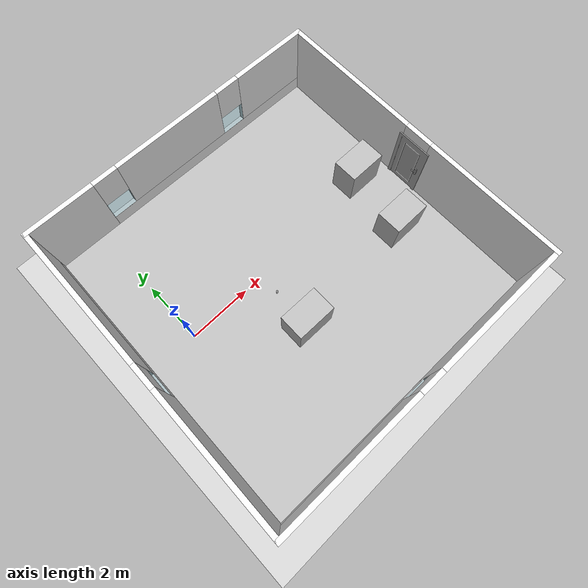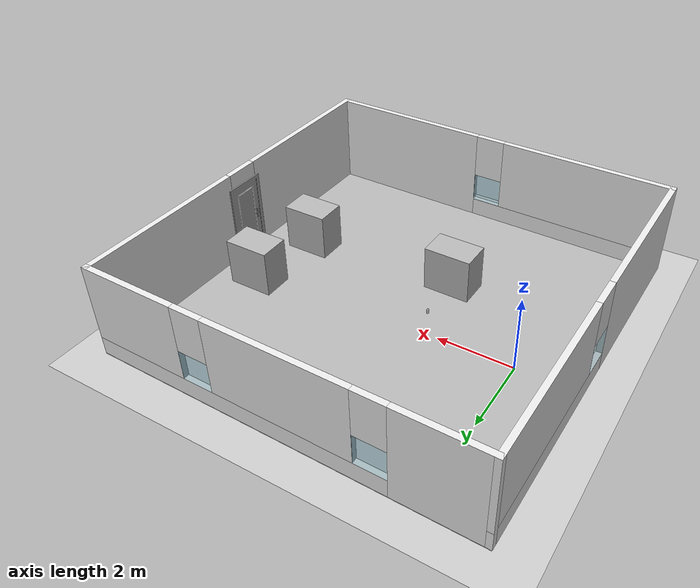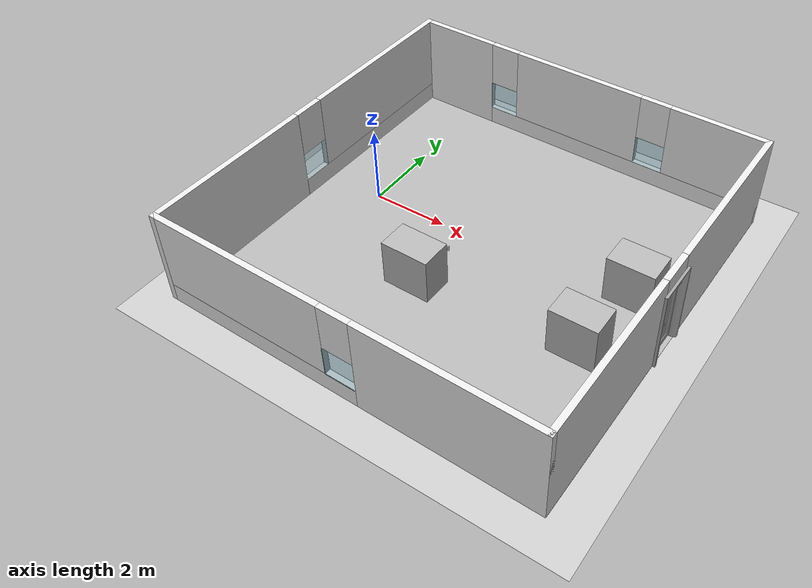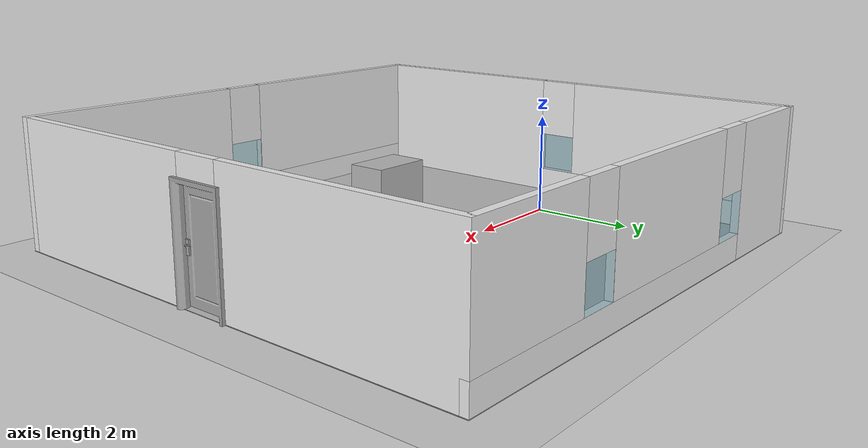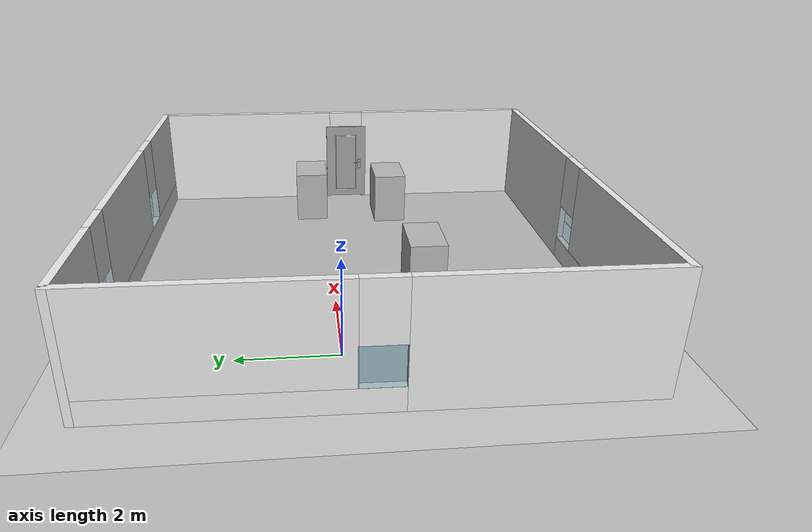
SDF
<sdf version="1.6">
 <world name="default">
  <scene><ambient>0.5 0.5 0.5 1</ambient><background>0.5 0.5 0.5 1</background><shadows>0</shadows></scene>
  <physics name="default_physics" default="0" type="ode">
   <ode>
    <solver>
     <type>quick</type>
     <iters>10</iters>
     <sor>1.3</sor>
     <use_dynamic_moi_rescaling>0</use_dynamic_moi_rescaling>
    </solver>
    <constraints>
     <cfm>0</cfm>
     <erp>0.2</erp>
     <contact_max_correcting_vel>100</contact_max_correcting_vel>
     <contact_surface_layer>0.001</contact_surface_layer>
    </constraints>
   </ode>
   <real_time_update_rate>1000</real_time_update_rate>
   <max_step_size>0.001</max_step_size>
   <real_time_factor>1</real_time_factor>
  </physics>
  <model name="ground_plane">
   <static>1</static>
   <link name="link">
    <collision name="collision">
     <geometry><plane><normal>0 0 1</normal><size>100 100</size></plane></geometry>
     <surface>
      <contact><collide_bitmask>65535</collide_bitmask></contact>
      <friction><ode><mu>100</mu><mu2>50</mu2></ode></friction>
     </surface>
    </collision>
    <visual name="visual">
     <cast_shadows>0</cast_shadows>
     <geometry><plane><normal>0 0 1</normal><size>100 100</size></plane></geometry>
     <material>
      <script><uri>file://media/materials/scripts/gazebo.material</uri><name>Gazebo/Grey</name></script>
     </material>
    </visual>
   </link>
  </model>
  <light name="my_light" type="directional">
   <pose>0 0 30 0 -0 0</pose>
   <diffuse>0.5 0.5 0.5 1</diffuse>
   <specular>0.1 0.1 0.1 1</specular>
   <attenuation><range>200</range></attenuation>
   <direction>0 0 -1</direction>
   <cast_shadows>0</cast_shadows>
  </light>
  <gravity>0 0 -9.8</gravity>
  <magnetic_field>6e-06 2.3e-05 -4.2e-05</magnetic_field>
  <atmosphere type="adiabatic"/>
  <audio><device>default</device></audio>
  <spherical_coordinates>
   <surface_model>EARTH_WGS84</surface_model>
   <latitude_deg>0</latitude_deg>
   <longitude_deg>0</longitude_deg>
   <elevation>0</elevation>
   <heading_deg>0</heading_deg>
  </spherical_coordinates>
  <model name="office_small">
   <model name="door_3d">
    <link name="link_1">
     <visual name="visual">
      <geometry><mesh><uri>model://door_3d/meshes/door_v2_door.dae</uri><scale>1 1 1</scale></mesh></geometry>
      <material>
       <script>
        <uri>model://door_3d/materials/scripts</uri>
        <uri>model://door_3d/materials/textures</uri>
        <name>door_3d</name>
       </script>
      </material>
     </visual>
     <collision name="collision">
      <geometry><mesh><uri>model://door_3d/meshes/door_v2_door.dae</uri><scale>1 1 1</scale></mesh></geometry>
     </collision>
    </link>
    <link name="link_2">
     <visual name="visual">
      <geometry><mesh><uri>model://door_3d/meshes/door_v2_handle.dae</uri><scale>1 1 1</scale></mesh></geometry>
      <material>
       <script>
        <uri>model://door_3d/materials/scripts</uri>
        <uri>model://door_3d/materials/textures</uri>
        <name>door_handle</name>
       </script>
      </material>
     </visual>
     <collision name="collision">
      <geometry><mesh><uri>model://door_3d/meshes/door_v2_handle.dae</uri><scale>1 1 1</scale></mesh></geometry>
     </collision>
    </link>
    <static>1</static>
    <pose>0.856135 4.98035 0 0 -0 0</pose>
   </model>
   <model name="office_small">
    <pose>0.796663 0.043102 0 0 -0 0</pose>
    <link name="Wall_2">
     <pose>0 4.925 0 0 -0 0</pose>
     <visual name="Wall_2_Visual_0">
      <pose>-2.69024 0 1.25 0 -0 0</pose>
      <geometry><box><size>4.61951 0.15 2.5</size></box></geometry>
      <material>
       <script>
        <uri>model://office_small/materials/scripts</uri>
        <uri>model://office_small/materials/textures</uri>
        <name>wall_white</name>
       </script>
      </material>
     </visual>
     <collision name="Wall_2_Collision_0">
      <geometry><box><size>4.61951 0.15 2.5</size></box></geometry>
      <pose>-2.69024 0 1.25 0 -0 0</pose>
     </collision>
     <visual name="Wall_2_Visual_1">
      <pose>2.75976 0 1.25 0 -0 0</pose>
      <geometry><box><size>4.48049 0.15 2.5</size></box></geometry>
      <material>
       <script>
        <uri>model://office_small/materials/scripts</uri>
        <uri>model://office_small/materials/textures</uri>
        <name>wall_white</name>
       </script>
      </material>
     </visual>
     <collision name="Wall_2_Collision_1">
      <geometry><box><size>4.48049 0.15 2.5</size></box></geometry>
      <pose>2.75976 0 1.25 0 -0 0</pose>
     </collision>
     <visual name="Wall_2_Visual_2">
      <pose>0.06951 0 2.25 0 -0 0</pose>
      <geometry><box><size>0.9 0.15 0.5</size></box></geometry>
      <material>
       <script>
        <uri>model://office_small/materials/scripts</uri>
        <uri>model://office_small/materials/textures</uri>
        <name>wall_white</name>
       </script>
      </material>
     </visual>
     <collision name="Wall_2_Collision_2">
      <geometry><box><size>0.9 0.15 0.5</size></box></geometry>
      <pose>0.06951 0 2.25 0 -0 0</pose>
     </collision>
    </link>
    <link name="Wall_3">
     <pose>4.925 0 0 0 0 -1.5708</pose>
     <visual name="Wall_3_Visual_0">
      <pose>-2.74228 0 1.25 0 -0 0</pose>
      <geometry><box><size>4.51544 0.15 2.5</size></box></geometry>
      <material>
       <script>
        <uri>model://office_small/materials/scripts</uri>
        <uri>model://office_small/materials/textures</uri>
        <name>wall_white</name>
       </script>
      </material>
     </visual>
     <collision name="Wall_3_Collision_0">
      <geometry><box><size>4.51544 0.15 2.5</size></box></geometry>
      <pose>-2.74228 0 1.25 0 -0 0</pose>
     </collision>
     <visual name="Wall_3_Visual_1">
      <pose>2.25772 0 0.25 0 -0 0</pose>
      <geometry><box><size>5.48456 0.15 0.5</size></box></geometry>
      <material>
       <script>
        <uri>model://office_small/materials/scripts</uri>
        <uri>model://office_small/materials/textures</uri>
        <name>wall_white</name>
       </script>
      </material>
     </visual>
     <collision name="Wall_3_Collision_1">
      <geometry><box><size>5.48456 0.15 0.5</size></box></geometry>
      <pose>2.25772 0 0.25 0 -0 0</pose>
     </collision>
     <visual name="Wall_3_Visual_2">
      <pose>2.65772 0 1.5 0 -0 0</pose>
      <geometry><box><size>4.68456 0.15 2</size></box></geometry>
      <material>
       <script>
        <uri>model://office_small/materials/scripts</uri>
        <uri>model://office_small/materials/textures</uri>
        <name>wall_white</name>
       </script>
      </material>
     </visual>
     <collision name="Wall_3_Collision_2">
      <geometry><box><size>4.68456 0.15 2</size></box></geometry>
      <pose>2.65772 0 1.5 0 -0 0</pose>
     </collision>
     <visual name="Wall_3_Visual_3">
      <pose>-0.084559 0 1.9 0 -0 0</pose>
      <geometry><box><size>0.8 0.15 1.2</size></box></geometry>
      <material>
       <script>
        <uri>model://office_small/materials/scripts</uri>
        <uri>model://office_small/materials/textures</uri>
        <name>wall_white</name>
       </script>
      </material>
     </visual>
     <collision name="Wall_3_Collision_3">
      <geometry><box><size>0.8 0.15 1.2</size></box></geometry>
      <pose>-0.084559 0 1.9 0 -0 0</pose>
     </collision>
    </link>
    <link name="Wall_4">
     <pose>0 -4.925 0 0 -0 3.14159</pose>
     <visual name="Wall_4_Visual_0">
      <pose>-2.74632 0 1.25 0 -0 0</pose>
      <geometry><box><size>4.50736 0.15 2.5</size></box></geometry>
      <material>
       <script>
        <uri>model://office_small/materials/scripts</uri>
        <uri>model://office_small/materials/textures</uri>
        <name>wall_white</name>
       </script>
      </material>
     </visual>
     <collision name="Wall_4_Collision_0">
      <geometry><box><size>4.50736 0.15 2.5</size></box></geometry>
      <pose>-2.74632 0 1.25 0 -0 0</pose>
     </collision>
     <visual name="Wall_4_Visual_1">
      <pose>2.25368 0 0.25 0 -0 0</pose>
      <geometry><box><size>5.49264 0.15 0.5</size></box></geometry>
      <material>
       <script>
        <uri>model://office_small/materials/scripts</uri>
        <uri>model://office_small/materials/textures</uri>
        <name>wall_white</name>
       </script>
      </material>
     </visual>
     <collision name="Wall_4_Collision_1">
      <geometry><box><size>5.49264 0.15 0.5</size></box></geometry>
      <pose>2.25368 0 0.25 0 -0 0</pose>
     </collision>
     <visual name="Wall_4_Visual_2">
      <pose>2.65368 0 1.5 0 -0 0</pose>
      <geometry><box><size>4.69264 0.15 2</size></box></geometry>
      <material>
       <script>
        <uri>model://office_small/materials/scripts</uri>
        <uri>model://office_small/materials/textures</uri>
        <name>wall_white</name>
       </script>
      </material>
     </visual>
     <collision name="Wall_4_Collision_2">
      <geometry><box><size>4.69264 0.15 2</size></box></geometry>
      <pose>2.65368 0 1.5 0 -0 0</pose>
     </collision>
     <visual name="Wall_4_Visual_3">
      <pose>-0.09264 0 1.9 0 -0 0</pose>
      <geometry><box><size>0.8 0.15 1.2</size></box></geometry>
      <material>
       <script>
        <uri>model://office_small/materials/scripts</uri>
        <uri>model://office_small/materials/textures</uri>
        <name>wall_white</name>
       </script>
      </material>
     </visual>
     <collision name="Wall_4_Collision_3">
      <geometry><box><size>0.8 0.15 1.2</size></box></geometry>
      <pose>-0.09264 0 1.9 0 -0 0</pose>
     </collision>
    </link>
    <link name="Wall_5">
     <pose>-4.925 0 0 0 -0 1.5708</pose>
     <visual name="Wall_5_Visual_0">
      <pose>-3.88364 0 1.25 0 -0 0</pose>
      <geometry><box><size>2.23271 0.15 2.5</size></box></geometry>
      <material>
       <script>
        <uri>model://office_small/materials/scripts</uri>
        <uri>model://office_small/materials/textures</uri>
        <name>wall_white</name>
       </script>
      </material>
     </visual>
     <collision name="Wall_5_Collision_0">
      <geometry><box><size>2.23271 0.15 2.5</size></box></geometry>
      <pose>-3.88364 0 1.25 0 -0 0</pose>
     </collision>
     <visual name="Wall_5_Visual_1">
      <pose>1.11636 0 0.25 0 -0 0</pose>
      <geometry><box><size>7.76729 0.15 0.5</size></box></geometry>
      <material>
       <script>
        <uri>model://office_small/materials/scripts</uri>
        <uri>model://office_small/materials/textures</uri>
        <name>wall_white</name>
       </script>
      </material>
     </visual>
     <collision name="Wall_5_Collision_1">
      <geometry><box><size>7.76729 0.15 0.5</size></box></geometry>
      <pose>1.11636 0 0.25 0 -0 0</pose>
     </collision>
     <visual name="Wall_5_Visual_2">
      <pose>-0.169878 0 1.5 0 -0 0</pose>
      <geometry><box><size>3.59482 0.15 2</size></box></geometry>
      <material>
       <script>
        <uri>model://office_small/materials/scripts</uri>
        <uri>model://office_small/materials/textures</uri>
        <name>wall_white</name>
       </script>
      </material>
     </visual>
     <collision name="Wall_5_Collision_2">
      <geometry><box><size>3.59482 0.15 2</size></box></geometry>
      <pose>-0.169878 0 1.5 0 -0 0</pose>
     </collision>
     <visual name="Wall_5_Visual_3">
      <pose>3.71376 0 1.5 0 -0 0</pose>
      <geometry><box><size>2.57247 0.15 2</size></box></geometry>
      <material>
       <script>
        <uri>model://office_small/materials/scripts</uri>
        <uri>model://office_small/materials/textures</uri>
        <name>wall_white</name>
       </script>
      </material>
     </visual>
     <collision name="Wall_5_Collision_3">
      <geometry><box><size>2.57247 0.15 2</size></box></geometry>
      <pose>3.71376 0 1.5 0 -0 0</pose>
     </collision>
     <visual name="Wall_5_Visual_4">
      <pose>-2.36729 0 1.9 0 -0 0</pose>
      <geometry><box><size>0.8 0.15 1.2</size></box></geometry>
      <material>
       <script>
        <uri>model://office_small/materials/scripts</uri>
        <uri>model://office_small/materials/textures</uri>
        <name>wall_white</name>
       </script>
      </material>
     </visual>
     <collision name="Wall_5_Collision_4">
      <geometry><box><size>0.8 0.15 1.2</size></box></geometry>
      <pose>-2.36729 0 1.9 0 -0 0</pose>
     </collision>
     <visual name="Wall_5_Visual_5">
      <pose>2.02753 0 1.9 0 -0 0</pose>
      <geometry><box><size>0.8 0.15 1.2</size></box></geometry>
      <material>
       <script>
        <uri>model://office_small/materials/scripts</uri>
        <uri>model://office_small/materials/textures</uri>
        <name>wall_white</name>
       </script>
      </material>
     </visual>
     <collision name="Wall_5_Collision_5">
      <geometry><box><size>0.8 0.15 1.2</size></box></geometry>
      <pose>2.02753 0 1.9 0 -0 0</pose>
     </collision>
    </link>
    <static>1</static>
   </model>
   <model name="window">
    <link name="link_2">
     <visual name="visual">
      <pose>0 0 0.9 0 -0 0</pose>
      <geometry><box><size>0.8 0.15 0.8</size></box></geometry>
      <material>
       <lighting>1</lighting>
       <ambient>0.1 0.5 0.6 1</ambient>
       <diffuse>0.1 0.5 0.6 1</diffuse>
       <specular>0.01 0.01 0.01 1</specular>
       <emissive>0 0 0 1</emissive>
      </material>
      <transparency>0.7</transparency>
     </visual>
     <collision name="collision">
      <pose>0 0 0.9 0 -0 0</pose>
      <geometry><box><size>0.8 0.15 0.8</size></box></geometry>
     </collision>
    </link>
    <static>1</static>
    <pose>-4.12651 2.07152 0 0 -0 1.5706</pose>
   </model>
   <model name="window_0">
    <link name="link_2">
     <visual name="visual">
      <pose>0 0 0.9 0 -0 0</pose>
      <geometry><box><size>0.8 0.15 0.8</size></box></geometry>
      <material>
       <lighting>1</lighting>
       <ambient>0.1 0.5 0.6 1</ambient>
       <diffuse>0.1 0.5 0.6 1</diffuse>
       <specular>0.01 0.01 0.01 1</specular>
       <emissive>0 0 0 1</emissive>
      </material>
      <transparency>0.7</transparency>
     </visual>
     <collision name="collision">
      <pose>0 0 0.9 0 -0 0</pose>
      <geometry><box><size>0.8 0.15 0.8</size></box></geometry>
     </collision>
    </link>
    <static>1</static>
    <pose>-4.12726 -2.32854 0 0 -0 1.57</pose>
   </model>
   <model name="window_1">
    <link name="link_2">
     <visual name="visual">
      <pose>0 0 0.9 0 -0 0</pose>
      <geometry><box><size>0.8 0.15 0.8</size></box></geometry>
      <material>
       <lighting>1</lighting>
       <ambient>0.1 0.5 0.6 1</ambient>
       <diffuse>0.1 0.5 0.6 1</diffuse>
       <specular>0.01 0.01 0.01 1</specular>
       <emissive>0 0 0 1</emissive>
      </material>
      <transparency>0.7</transparency>
     </visual>
     <collision name="collision">
      <pose>0 0 0.9 0 -0 0</pose>
      <geometry><box><size>0.8 0.15 0.8</size></box></geometry>
     </collision>
    </link>
    <static>1</static>
    <pose>0.875059 -4.88342 0 0 -0 0</pose>
   </model>
   <model name="window_2">
    <link name="link_2">
     <visual name="visual">
      <pose>0 0 0.9 0 -0 0</pose>
      <geometry><box><size>0.8 0.15 0.8</size></box></geometry>
      <material>
       <lighting>1</lighting>
       <ambient>0.1 0.5 0.6 1</ambient>
       <diffuse>0.1 0.5 0.6 1</diffuse>
       <specular>0.01 0.01 0.01 1</specular>
       <emissive>0 0 0 1</emissive>
      </material>
      <transparency>0.7</transparency>
     </visual>
     <collision name="collision">
      <pose>0 0 0.9 0 -0 0</pose>
      <geometry><box><size>0.8 0.15 0.8</size></box></geometry>
     </collision>
    </link>
    <static>1</static>
    <pose>5.73592 0.126978 0 0 -0 1.57</pose>
   </model>
   <model name="Floor">
    <link name="main">
     <pose>0.795 0.05 0.01 0 -0 0</pose>
     <collision name="main_Collision"><geometry><box><size>10 10 0.01</size></box></geometry></collision>
     <visual name="main_Visual">
      <geometry><box><size>10 10 0.01</size></box></geometry>
      <material>
       <script>
        <uri>model://office_small/materials/scripts</uri>
        <uri>model://office_small/materials/textures</uri>
        <name>floor</name>
       </script>
      </material>
     </visual>
    </link>
    <static>1</static>
   </model>
   <static>0</static>
   <pose>3.30174 0.266404 0 0 0 -1.58427</pose>
  </model>
  <model name="coca_cola">
   <link name="link">
    <pose>0 0 0.115 0 -0 0</pose>
    <inertial>
     <mass>0.39</mass>
     <inertia><ixx>0.00058</ixx><ixy>0</ixy><ixz>0</ixz><iyy>0.00058</iyy><iyz>0</iyz><izz>0.00019</izz></inertia>
    </inertial>
    <collision name="collision">
     <geometry><cylinder><radius>0.0301625</radius><length>0.12065</length></cylinder></geometry>
    </collision>
    <visual name="bodyMesh">
     <geometry><mesh><uri>model://coca_cola/meshes/coke.dae</uri><scale>1 1 1</scale></mesh></geometry>
    </visual>
   </link>
   <pose>2.64739 -0.69327 -0.039676 -2.4e-05 8e-06 0.00372</pose>
  </model>
  <model name="big_box3">
   <pose>2.62133 -1.96999 0.614498 3.14001 1.57 -0.013322</pose>
   <static>0</static>
   <link name="link">
    <inertial>
     <mass>40</mass>
     <inertia><ixx>1</ixx><ixy>0</ixy><ixz>0</ixz><iyy>1</iyy><iyz>0</iyz><izz>1</izz></inertia>
    </inertial>
    <collision name="collision">
     <geometry><box><size>1.2 0.8 1.25</size></box></geometry>
     <surface><contact><ode><max_vel>0.1</max_vel><min_depth>0.001</min_depth></ode></contact></surface>
    </collision>
    <visual name="visual">
     <geometry><mesh><uri>model://big_box3/meshes/big_box.dae</uri></mesh></geometry>
    </visual>
   </link>
  </model>
  <model name="big_box3_0">
   <pose>7.07383 0.365572 0.639497 4e-06 -0.000833 -0.000689</pose>
   <static>0</static>
   <link name="link">
    <inertial>
     <mass>40</mass>
     <inertia><ixx>1</ixx><ixy>0</ixy><ixz>0</ixz><iyy>1</iyy><iyz>0</iyz><izz>1</izz></inertia>
    </inertial>
    <collision name="collision">
     <geometry><box><size>1.2 0.8 1.25</size></box></geometry>
     <surface><contact><ode><max_vel>0.1</max_vel><min_depth>0.001</min_depth></ode></contact></surface>
    </collision>
    <visual name="visual">
     <geometry><mesh><uri>model://big_box3/meshes/big_box.dae</uri></mesh></geometry>
    </visual>
   </link>
  </model>
  <model name="Big box 4">
   <pose>6.77984 -1.69134 0.639499 -3e-06 -0.000835 -0.001437</pose>
   <static>0</static>
   <link name="link">
    <inertial>
     <mass>40</mass>
     <inertia><ixx>1</ixx><ixy>0</ixy><ixz>0</ixz><iyy>1</iyy><iyz>0</iyz><izz>1</izz></inertia>
    </inertial>
    <collision name="collision">
     <geometry><box><size>1.2 0.8 1.25</size></box></geometry>
     <surface><contact><ode><max_vel>0.1</max_vel><min_depth>0.001</min_depth></ode></contact></surface>
    </collision>
    <visual name="visual">
     <geometry><mesh><uri>model://big_box4/meshes/big_box.dae</uri></mesh></geometry>
    </visual>
   </link>
  </model>
 </world>
</sdf>
